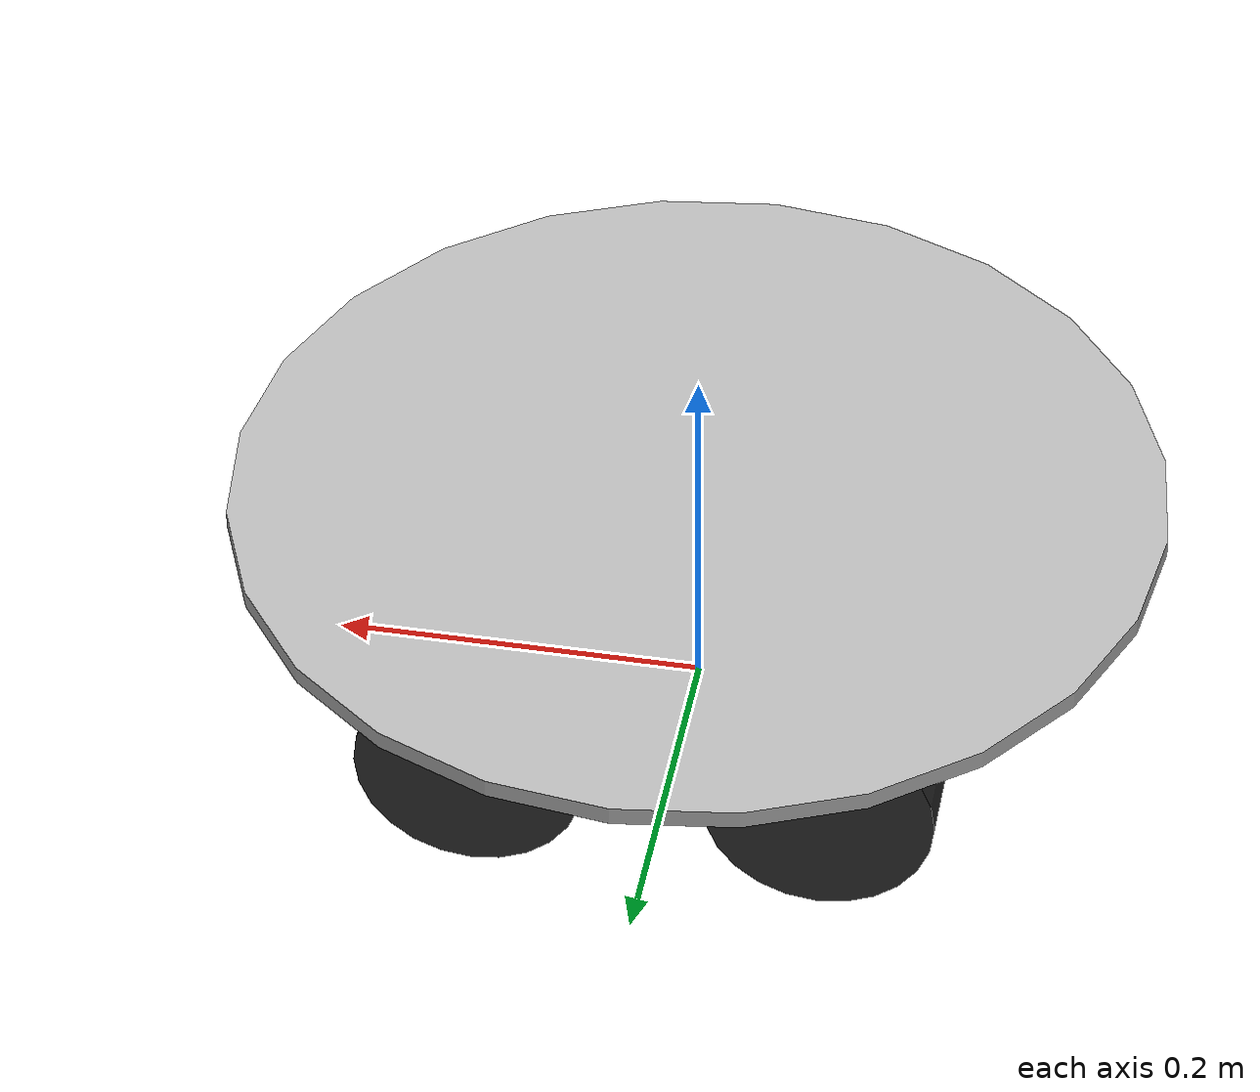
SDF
<?xml version='1.0'?>
<sdf version='1.6'>
  <model name='m_4wrobot'>
	  <static>true</static>
	  <pose>0 0 0 0 0 0</pose>
	  <link name = 'chassis'>
		  <pose>0 0 0.1260 0 0 0</pose>

		  <visual name='visual'>
			  <geometry>
				  <cylinder>
					  <radius>0.25</radius>
					  <length>0.01</length>
				  </cylinder>
			  </geometry>

		  </visual>
		  <collision name='collision'>
			  <geometry>
				  <cylinder>
					  <radius>0.25</radius>
					  <length>0.01</length>
				  </cylinder>
			  </geometry>
		  </collision>
	  </link>
	  <link name = 'wheelFL'>
		  <pose>0.0919 0.13485 0.0605 0 1.5705 1.5705</pose>
		  <visual name = 'visual'>
			  <geometry>
				  <cylinder>
					  <radius>0.0605</radius>
					  <length>0.0605</length>
				  </cylinder>
			  </geometry>
			  <material>
				<ambient>0.2 0.2 0.2 01</ambient>
				<diffuse>0.2 0.2 0.2 01</diffuse>
				<specular>0 0 0 0</specular>
				<emissive>0 0 0 0</emissive>
			  </material>
		  </visual>
		  <collision name = 'collision'>
			  <geometry>
				  <cylinder>
					  <radius>0.0605</radius>
					  <length>0.0605</length>
				  </cylinder>
			  </geometry>
		  </collision>
      </link>
      <link name = 'wheelFR'>
		  <pose>0.0919 -0.13485 0.0605 0 1.5705 1.5705</pose>
		  <visual name = 'visual'>
			  <geometry>
				  <cylinder>
					  <radius>0.0605</radius>
					  <length>0.0605</length>
				  </cylinder>
			  </geometry>
			  <material>
				<ambient>0.2 0.2 0.2 01</ambient>
				<diffuse>0.2 0.2 0.2 01</diffuse>
				<specular>0 0 0 0</specular>
				<emissive>0 0 0 0</emissive>
			  </material>
		  </visual>
		  <collision name = 'collision'>
			  <geometry>
				  <cylinder>
					  <radius>0.0605</radius>
					  <length>0.0605</length>
				  </cylinder>
			  </geometry>
		  </collision>
      </link>
      <link name = 'wheelBR'>
		  <pose>-0.0919 -0.13485 0.0605 0 1.5705 1.5705</pose>
		  <visual name = 'visual'>
			  <geometry>
				  <cylinder>
					  <radius>0.0605</radius>
					  <length>0.0605</length>
				  </cylinder>
			  </geometry>
			  <material>
				<ambient>0.2 0.2 0.2 01</ambient>
				<diffuse>0.2 0.2 0.2 01</diffuse>
				<specular>0 0 0 0</specular>
				<emissive>0 0 0 0</emissive>
			  </material>
		  </visual>
		  <collision name = 'collision'>
			  <geometry>
				  <cylinder>
					  <radius>0.0605</radius>
					  <length>0.0605</length>
				  </cylinder>
			  </geometry>
		  </collision>
      </link>
      <link name = 'wheelBL'>
		  <pose>-0.0919 0.13485 0.0605 0 1.5705 1.5705</pose>
		  <visual name = 'visual'>
			  <geometry>
				  <cylinder>
					  <radius>0.0605</radius>
					  <length>0.0605</length>
				  </cylinder>
			  </geometry>
			  <material>
				<ambient>0.2 0.2 0.2 01</ambient>
				<diffuse>0.2 0.2 0.2 01</diffuse>
				<specular>0 0 0 0</specular>
				<emissive>0 0 0 0</emissive>
			  </material>
		  </visual>
		  <collision name = 'collision'>
			  <geometry>
				  <cylinder>
					  <radius>0.0605</radius>
					  <length>0.0605</length>
				  </cylinder>
			  </geometry>
		  </collision>
      </link>
      <joint type='revolute' name='FR_joint'>
		  <pose>0 0 0.03025 0 0 0</pose>
		  <child>wheelFR</child>
		  <parent>chassis</parent>
		  <axis>
			  <xyz>0 0 1</xyz>
		  </axis>
		  <physics>
			  <ode>
				  <max_force>0</max_force>
			  </ode>
		  </physics>
      </joint>
      <joint type='revolute' name='FL_joint'>
		  <pose>0 0 -0.03025 0 0 0</pose>
		  <child>wheelFL</child>
		  <parent>chassis</parent>
		  <axis>
			  <xyz>0 0 1</xyz>
		  </axis>
		  <physics>
			  <ode>
				  <max_force>0</max_force>
			  </ode>
		  </physics>
      </joint>
      <joint type='revolute' name='BR_joint'>
		  <pose>0 0 0.03025 0 0 0</pose>
		  <child>wheelBR</child>
		  <parent>chassis</parent>
		  <axis>
			  <xyz>0 0 1</xyz>
		  </axis>
		  <physics>
			  <ode>
				  <max_force>0</max_force>
			  </ode>
		  </physics>
      </joint>
      <joint type='revolute' name='BL_joint'>
		  <pose>0 0 -0.03025 0 0 0</pose>
		  <child>wheelBL</child>
		  <parent>chassis</parent>
		  <axis>
			  <xyz>0 0 1</xyz>
		  </axis>
		  <physics>
			  <ode>
				  <max_force>0</max_force>
			  </ode>
		  </physics>
      </joint>

  </model>
 </sdf>
